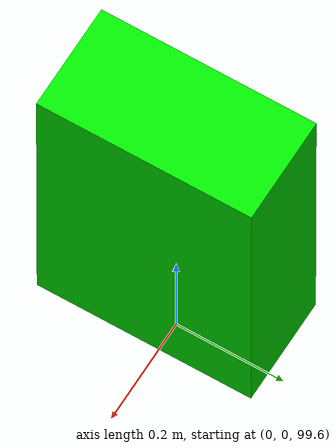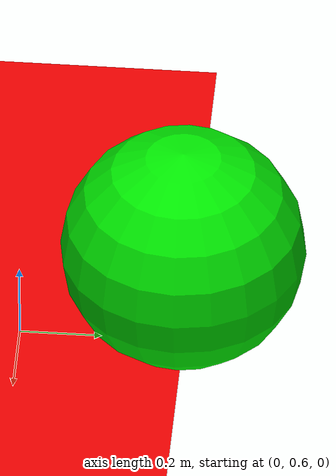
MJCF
<mujoco>
	<worldbody>
    <light diffuse=".5 .5 .5" pos="0 0 3" dir="0 0 -1"/>
		<geom type="plane" size="1 1 0.1" rgba=".9 0 0 1"/>
		<body pos="0 0 100">
			<joint type="free"/>
			<geom type="box" size=".1 .2 .3" rgba="0 .9 0 1"/>
		</body>
		<body pos="0 1 .3">
			<joint type="free"/>
			<geom type="sphere" size=".3 .2 .3" rgba="0 .9 0 1"/>
		</body>
	</worldbody>
</mujoco>
